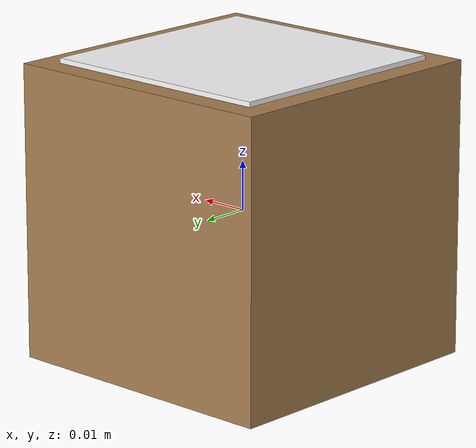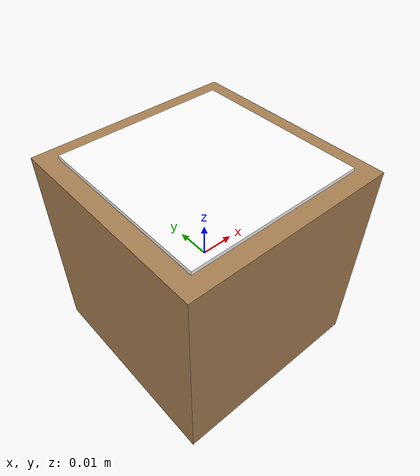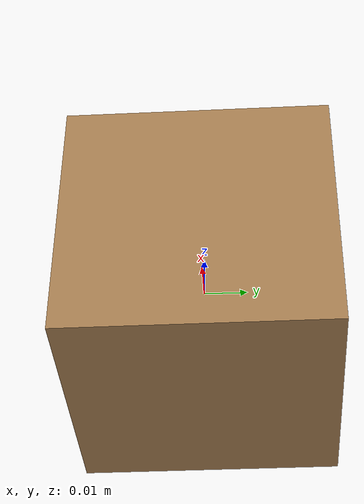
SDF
<?xml version="1.0"?>
<sdf version="1.10">
  <model name="aruco_parcel">
    <link name="link">
      <inertial>
        <mass>0.05</mass>
        <inertia><ixx>3.0e-5</ixx><iyy>3.0e-5</iyy><izz>3.0e-5</izz>
          <ixy>0</ixy><ixz>0</ixz><iyz>0</iyz></inertia>
      </inertial>
      <collision name="collision">
        <geometry><box><size>0.06 0.06 0.06</size></box></geometry>
      </collision>
      <!-- Corps carton brun -->
      <visual name="body">
        <geometry><box><size>0.06 0.06 0.06</size></box></geometry>
        <material>
          <ambient>0.55 0.42 0.26 1</ambient>
          <diffuse>0.66 0.50 0.32 1</diffuse>
          <specular>0.03 0.03 0.03 1</specular>
        </material>
      </visual>
      <!-- Tuile marqueur 0.05 x 0.05 sur le dessus (z = 0.03 + 0.0005) -->
      <visual name="marker">
        <pose>0 0 0.0305 0 0 0</pose>
        <geometry><box><size>0.05 0.05 0.001</size></box></geometry>
        <material>
          <ambient>1 1 1 1</ambient><diffuse>1 1 1 1</diffuse>
          <pbr><metal>
            <albedo_map>aruco_parcel/materials/textures/aruco_0.png</albedo_map>
            <metalness>0.0</metalness><roughness>1.0</roughness>
          </metal></pbr>
        </material>
      </visual>
    </link>
  </model>
</sdf>
